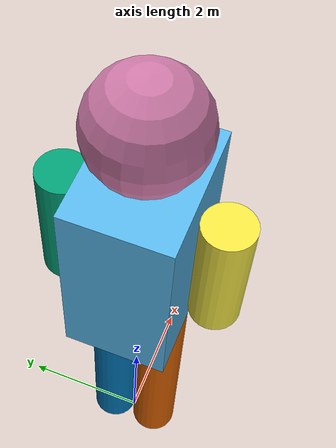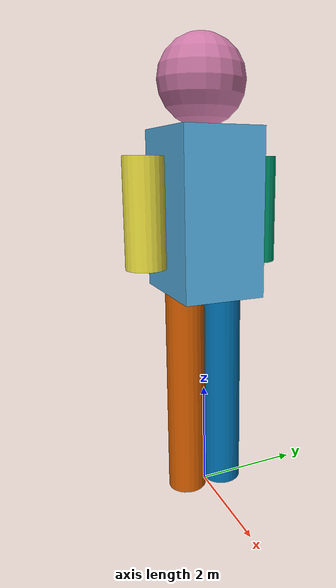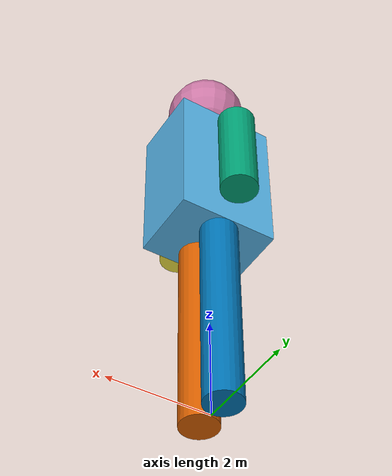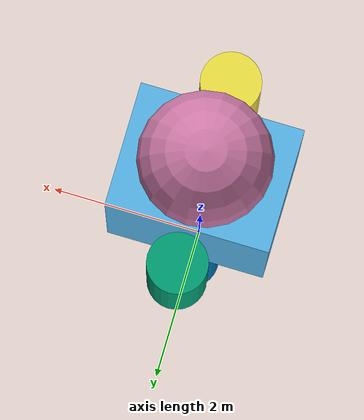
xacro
<?xml version="1.0"?>
<robot name="demo1" xmlns:xacro="http://ros.org/wiki/xacro">

    <!-- ================= 尺寸参数 ================= -->
    <xacro:property name="radius" value="0.37"/>
    <xacro:property name="leg_length" value="4"/>
    <xacro:property name="arm_length" value="2"/>

    <xacro:property name="torso_size_x" value="2"/>
    <xacro:property name="torso_size_y" value="1.5"/>
    <xacro:property name="torso_size_z" value="3"/>
    <xacro:property name="torso_center_z" value="5.5"/>

    <!-- 腿：中心高度 = 腿长/2；相对躯干中心的 z 偏移 -->
    <xacro:property name="leg_y" value="0.38"/>
    <xacro:property name="leg_center_z" value="${leg_length/2}"/>
    <xacro:property name="leg_joint_z" value="${leg_center_z - torso_center_z}"/>

    <!-- 手臂：贴着躯干侧面，y = 躯干半宽 + 手臂半径 -->
    <xacro:property name="arm_y" value="${torso_size_y/2 + radius}"/>

    <!-- 头：球底正好接躯干顶部 -->
    <xacro:property name="head_radius" value="0.8"/>
    <xacro:property name="head_center_z"
                    value="${torso_center_z + torso_size_z/2 + head_radius}"/>
    <xacro:property name="head_joint_z"
                    value="${head_center_z - torso_center_z}"/>

    <!-- ================= 根 link：脚底 ================= -->
    <link name="base_footprint"/>

    <joint name="base_to_human" type="fixed">
        <parent link="base_footprint"/>
        <child link="human_main"/>
        <origin xyz="0 0 ${torso_center_z}" rpy="0 0 0"/>
    </joint>

    <!-- ================= 躯干 ================= -->
    <link name="human_main">
        <visual>
            <origin xyz="0 0 0" rpy="0 0 0"/>
            <geometry>
                <box size="${torso_size_x} ${torso_size_y} ${torso_size_z}"/>
            </geometry>
        </visual>
        <collision>
            <origin xyz="0 0 0" rpy="0 0 0"/>
            <geometry>
                <box size="${torso_size_x} ${torso_size_y} ${torso_size_z}"/>
            </geometry>
        </collision>
    </link>

    <!-- ================= 手臂宏 ================= -->
    <xacro:macro name="arm" params="name y">
        <link name="${name}">
            <visual>
                <origin xyz="0 0 0" rpy="0 0 0"/>
                <geometry>
                    <cylinder length="${arm_length}" radius="${radius}"/>
                </geometry>
            </visual>
            <collision>
                <origin xyz="0 0 0" rpy="0 0 0"/>
                <geometry>
                    <cylinder length="${arm_length}" radius="${radius}"/>
                </geometry>
            </collision>
        </link>

        <joint name="${name}_joint" type="fixed">
            <parent link="human_main"/>
            <child link="${name}"/>
            <origin xyz="0 ${y} 0" rpy="0 0 0"/>
        </joint>
    </xacro:macro>

    <!-- ================= 腿宏 ================= -->
    <xacro:macro name="leg" params="name y">
        <link name="${name}">
            <visual>
                <origin xyz="0 0 0" rpy="0 0 0"/>
                <geometry>
                    <cylinder length="${leg_length}" radius="${radius}"/>
                </geometry>
            </visual>
            <collision>
                <origin xyz="0 0 0" rpy="0 0 0"/>
                <geometry>
                    <cylinder length="${leg_length}" radius="${radius}"/>
                </geometry>
            </collision>
        </link>

        <joint name="${name}_joint" type="fixed">
            <parent link="human_main"/>
            <child link="${name}"/>
            <origin xyz="0 ${y} ${leg_joint_z}" rpy="0 0 0"/>
        </joint>
    </xacro:macro>

    <!-- ================= 生成左右手臂和腿 ================= -->
    <xacro:arm name="left_arm"  y="${arm_y}"/>
    <xacro:arm name="right_arm" y="${-arm_y}"/>

    <xacro:leg name="left_leg"  y="${leg_y}"/>
    <xacro:leg name="right_leg" y="${-leg_y}"/>

    <link name="head">
        <visual>
            <origin xyz="0 0 0" rpy="0 0 0"/>
            <geometry>
                <sphere radius="${head_radius}"/>
            </geometry>
        </visual>
        <collision>
            <origin xyz="0 0 0" rpy="0 0 0"/>
            <geometry>
                <sphere radius="${head_radius}"/>
            </geometry>
        </collision>
    </link>

    <joint name="head_joint" type="fixed">
        <parent link="human_main"/>
        <child link="head"/>
        <origin xyz="0 0 ${head_joint_z}" rpy="0 0 0"/>
    </joint>

</robot>
